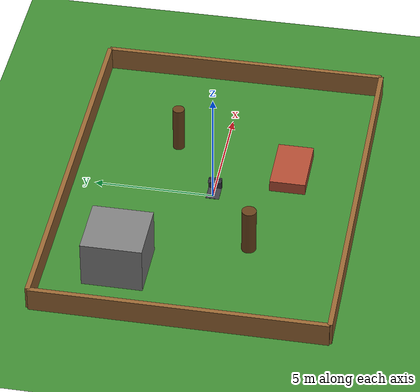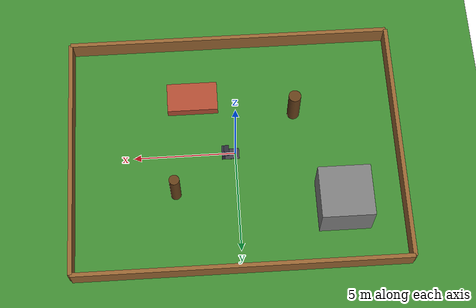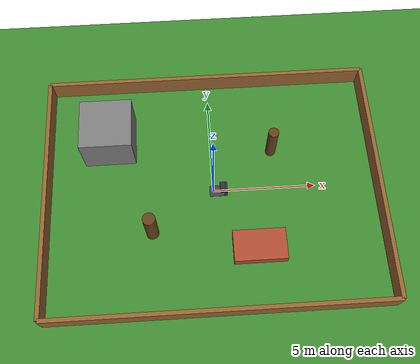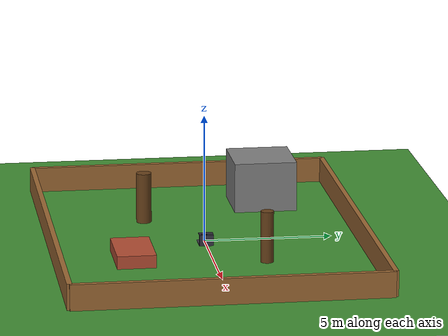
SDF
<?xml version="1.0" ?>
<sdf version="1.8">
  <world name="garden_world">
    <physics name="5ms" type="ignored">
      <max_step_size>0.005</max_step_size>
      <real_time_factor>1.0</real_time_factor>
    </physics>

    <!-- World Systems Plugins -->
    <plugin filename="gz-sim-physics-system" name="gz::sim::systems::Physics" />
    <plugin filename="gz-sim-user-commands-system" name="gz::sim::systems::UserCommands" />
    <plugin filename="gz-sim-scene-broadcaster-system" name="gz::sim::systems::SceneBroadcaster" />
    <plugin filename="gz-sim-sensors-system" name="gz::sim::systems::Sensors">
      <render_engine>ogre2</render_engine>
    </plugin>
    <plugin filename="gz-sim-imu-system" name="gz::sim::systems::Imu" />
    <plugin filename="gz-sim-contact-system" name="gz::sim::systems::Contact" />

    <!-- Lighting -->
    <light type="directional" name="sun">
      <cast_shadows>false</cast_shadows>
      <pose>0 0 15 0 0 0</pose>
      <diffuse>0.9 0.9 0.85 1</diffuse>
      <specular>0.3 0.3 0.3 1</specular>
      <direction>-0.4 0.2 -0.9</direction>
    </light>

    <!-- Grass Lawn Ground Plane -->
    <model name="lawn_ground">
      <static>true</static>
      <link name="link">
        <collision name="collision">
          <geometry>
            <plane>
              <normal>0 0 1</normal>
              <size>30 30</size>
            </plane>
          </geometry>
          <surface>
            <friction>
              <ode>
                <mu>1.2</mu>
                <mu2>1.2</mu2>
              </ode>
            </friction>
          </surface>
        </collision>
        <visual name="visual">
          <geometry>
            <plane>
              <normal>0 0 1</normal>
              <size>30 30</size>
            </plane>
          </geometry>
          <material>
            <ambient>0.2 0.5 0.2 1</ambient>
            <diffuse>0.25 0.55 0.2 1</diffuse>
            <specular>0.1 0.1 0.1 1</specular>
          </material>
        </visual>
      </link>
    </model>

    <!-- Perimeter Fences (16m x 12m yard) -->
    <!-- North Wall -->
    <model name="fence_north">
      <static>true</static>
      <pose>0 6 0.5 0 0 0</pose>
      <link name="link">
        <collision name="col"><geometry><box><size>16 0.2 1.0</size></box></geometry></collision>
        <visual name="vis">
          <geometry><box><size>16 0.2 1.0</size></box></geometry>
          <material><ambient>0.6 0.4 0.2 1</ambient><diffuse>0.6 0.4 0.2 1</diffuse></material>
        </visual>
      </link>
    </model>

    <!-- South Wall -->
    <model name="fence_south">
      <static>true</static>
      <pose>0 -6 0.5 0 0 0</pose>
      <link name="link">
        <collision name="col"><geometry><box><size>16 0.2 1.0</size></box></geometry></collision>
        <visual name="vis">
          <geometry><box><size>16 0.2 1.0</size></box></geometry>
          <material><ambient>0.6 0.4 0.2 1</ambient><diffuse>0.6 0.4 0.2 1</diffuse></material>
        </visual>
      </link>
    </model>

    <!-- East Wall -->
    <model name="fence_east">
      <static>true</static>
      <pose>8 0 0.5 0 0 0</pose>
      <link name="link">
        <collision name="col"><geometry><box><size>0.2 12 1.0</size></box></geometry></collision>
        <visual name="vis">
          <geometry><box><size>0.2 12 1.0</size></box></geometry>
          <material><ambient>0.6 0.4 0.2 1</ambient><diffuse>0.6 0.4 0.2 1</diffuse></material>
        </visual>
      </link>
    </model>

    <!-- West Wall -->
    <model name="fence_west">
      <static>true</static>
      <pose>-8 0 0.5 0 0 0</pose>
      <link name="link">
        <collision name="col"><geometry><box><size>0.2 12 1.0</size></box></geometry></collision>
        <visual name="vis">
          <geometry><box><size>0.2 12 1.0</size></box></geometry>
          <material><ambient>0.6 0.4 0.2 1</ambient><diffuse>0.6 0.4 0.2 1</diffuse></material>
        </visual>
      </link>
    </model>

    <!-- Tree 1 -->
    <model name="tree_1">
      <static>true</static>
      <pose>3 2 1.0 0 0 0</pose>
      <link name="trunk">
        <collision name="col"><geometry><cylinder><radius>0.25</radius><length>2.0</length></cylinder></geometry></collision>
        <visual name="vis">
          <geometry><cylinder><radius>0.25</radius><length>2.0</length></cylinder></geometry>
          <material><ambient>0.4 0.25 0.1 1</ambient><diffuse>0.4 0.25 0.1 1</diffuse></material>
        </visual>
      </link>
    </model>

    <!-- Tree 2 -->
    <model name="tree_2">
      <static>true</static>
      <pose>-3 -2 1.0 0 0 0</pose>
      <link name="trunk">
        <collision name="col"><geometry><cylinder><radius>0.3</radius><length>2.0</length></cylinder></geometry></collision>
        <visual name="vis">
          <geometry><cylinder><radius>0.3</radius><length>2.0</length></cylinder></geometry>
          <material><ambient>0.4 0.25 0.1 1</ambient><diffuse>0.4 0.25 0.1 1</diffuse></material>
        </visual>
      </link>
    </model>

    <!-- Flower Bed / Obstacle -->
    <model name="flower_bed">
      <static>true</static>
      <pose>2 -3 0.25 0 0 0</pose>
      <link name="link">
        <collision name="col"><geometry><box><size>2.5 1.5 0.5</size></box></geometry></collision>
        <visual name="vis">
          <geometry><box><size>2.5 1.5 0.5</size></box></geometry>
          <material><ambient>0.7 0.3 0.2 1</ambient><diffuse>0.7 0.3 0.2 1</diffuse></material>
        </visual>
      </link>
    </model>

    <!-- Patio / Shed Area -->
    <model name="garden_shed">
      <static>true</static>
      <pose>-5 3 1.0 0 0 0</pose>
      <link name="link">
        <collision name="col"><geometry><box><size>2.5 2.5 2.0</size></box></geometry></collision>
        <visual name="vis">
          <geometry><box><size>2.5 2.5 2.0</size></box></geometry>
          <material><ambient>0.5 0.5 0.5 1</ambient><diffuse>0.5 0.5 0.5 1</diffuse></material>
        </visual>
      </link>
    </model>

    <!-- Charging Station / Base Station Dock -->
    <!-- Charging Station / Base Station Dock (Head-First Docking) -->
    <model name="docking_station">
      <static>true</static>
      <pose>0.0 0.0 0.0 0 0 0</pose>
      <link name="station_link">
        <!-- Base Parking Tray (visual on ground) -->
        <visual name="vis_tray">
          <pose>0.20 0.0 0.005 0 0 0</pose>
          <geometry><box><size>0.75 0.55 0.01</size></box></geometry>
          <material><ambient>0.2 0.2 0.22 1</ambient><diffuse>0.25 0.25 0.28 1</diffuse></material>
        </visual>

        <!-- Station Tower (in front of robot head) -->
        <collision name="col_tower">
          <pose>0.60 0.0 0.22 0 0 0</pose>
          <geometry><box><size>0.15 0.55 0.44</size></box></geometry>
        </collision>
        <visual name="vis_tower">
          <pose>0.60 0.0 0.22 0 0 0</pose>
          <geometry><box><size>0.15 0.55 0.44</size></box></geometry>
          <material><ambient>0.15 0.15 0.18 1</ambient><diffuse>0.2 0.2 0.25 1</diffuse></material>
        </visual>

        <!-- Canopy / Roof Overhang -->
        <visual name="vis_roof">
          <pose>0.45 0.0 0.44 0 0 0</pose>
          <geometry><box><size>0.25 0.55 0.02</size></box></geometry>
          <material><ambient>0.12 0.12 0.15 1</ambient><diffuse>0.18 0.18 0.22 1</diffuse></material>
        </visual>

        <!-- AprilTag Visual Target (exact 0.141m / 141mm matching physical tag) -->
        <visual name="vis_apriltag">
          <pose>0.523 0.0 0.26 0 0 0</pose>
          <geometry>
            <box>
              <size>0.002 0.141 0.141</size>
            </box>
          </geometry>
          <material>
            <ambient>1 1 1 1</ambient>
            <diffuse>1 1 1 1</diffuse>
            <pbr>
              <metal>
                <albedo_map>model://Apriltag36_11_00000/materials/textures/tag36_11_00000.png</albedo_map>
                <roughness>0.9</roughness>
                <metalness>0.0</metalness>
              </metal>
            </pbr>
            <script>
              <uri>model://Apriltag36_11_00000/materials/scripts</uri>
              <uri>model://Apriltag36_11_00000/materials/textures</uri>
              <name>Apriltag36_11_00000</name>
            </script>
          </material>
        </visual>

        <!-- Charging Contacts (facing robot front bumper) -->
        <visual name="vis_contact_left">
          <pose>0.52 0.06 0.12 0 0 0</pose>
          <geometry><box><size>0.015 0.03 0.06</size></box></geometry>
          <material><ambient>0.9 0.7 0.1 1</ambient><diffuse>1.0 0.8 0.2 1</diffuse></material>
        </visual>
        <visual name="vis_contact_right">
          <pose>0.52 -0.06 0.12 0 0 0</pose>
          <geometry><box><size>0.015 0.03 0.06</size></box></geometry>
          <material><ambient>0.9 0.7 0.1 1</ambient><diffuse>1.0 0.8 0.2 1</diffuse></material>
        </visual>
      </link>
    </model>

  </world>
</sdf>
